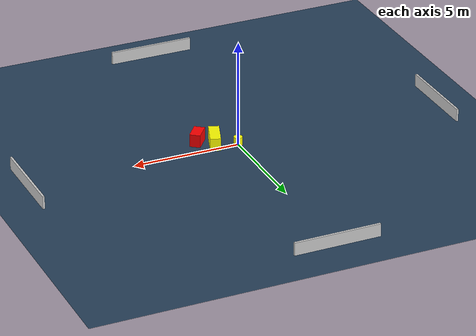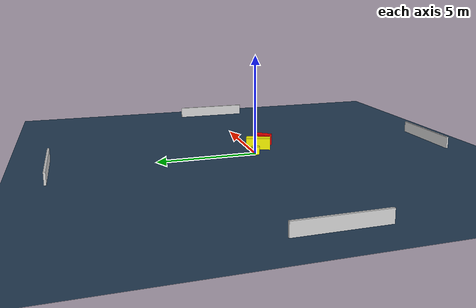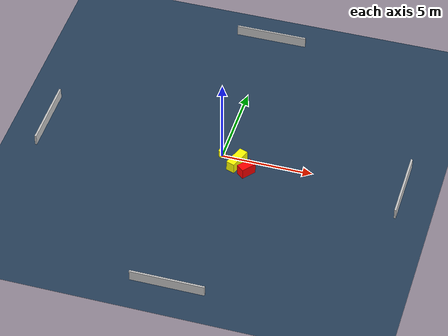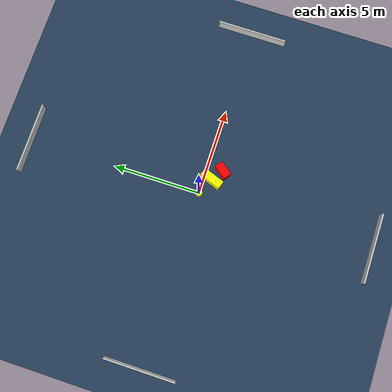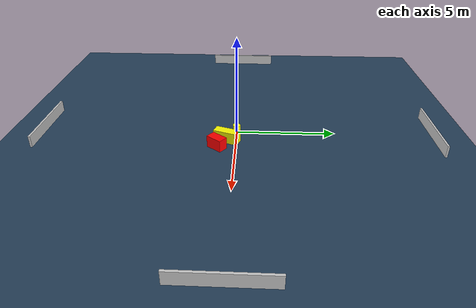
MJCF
<?xml version="1.0" ?>
<mujoco model="generated_environment">
  <option timestep="0.01" integrator="RK4" cone="elliptic"/>
  <default>
    <geom density="1"/>
  </default>
  <asset>
    <texture builtin="gradient" height="3072" name="skybox" rgb1="0.3 0.5 0.7" rgb2="0 0 0" type="skybox" width="512"/>
    <texture builtin="checker" height="300" name="groundplane" rgb1="0.2 0.3 0.4" rgb2="0.1 0.2 0.3" type="2d" width="300"/>
    <material name="groundplane" reflectance="0.2" texrepeat="5 5" texture="groundplane"/>
  </asset>
  <worldbody>
    <light dir="0 0 -1" directional="true" pos="0 0 1.5"/>
    <geom condim="3" friction="0.5 0.005 0.001" material="groundplane" name="floor" pos="0 0 0" size="0 0 0.05" type="plane"/>
    <body name="walls">
      <geom name="wall_1" condim="4" pos="-10.0 0.0 0.3" rgba="0.800000011920929 0.800000011920929 0.800000011920929 1.0" size="0.05 2.0 0.3" type="box"/>
      <geom name="wall_2" condim="4" pos="10.0 0.0 0.3" rgba="0.800000011920929 0.800000011920929 0.800000011920929 1.0" size="0.05 2.0 0.3" type="box"/>
      <geom name="wall_3" condim="4" pos="0.0 -10.0 0.3" rgba="0.800000011920929 0.800000011920929 0.800000011920929 1.0" size="2.0 0.05 0.3" type="box"/>
      <geom name="wall_4" condim="4" pos="0.0 10.0 0.3" rgba="0.800000011920929 0.800000011920929 0.800000011920929 1.0" size="2.0 0.05 0.3" type="box"/>
    </body>
    <body name="robot">
      <joint name="joint_x" type="slide" pos="0 0 0" axis="1 0 0"/>
      <joint name="joint_y" type="slide" pos="0 0 0" axis="0 1 0"/>
      <geom name="robot" type="cylinder" pos="0.0 0.0 0.2" size="0.2 0.2 0.0" mass="5.0" friction="1.0 0.005 0.0001" condim="4" rgba="1.0 1.0 0.0 1.0"/>
    </body>
    <body name="obstacle_1_movable">
      <geom name="obstacle_1_movable" condim="4" pos="0.9448926924082486 -0.45059334004456325 0.3" euler="0 0 250.03747223955457" friction="0.0 0.005 0.001" rgba="1.0 1.0 0.0 1.0" size="0.6321165632679544 0.2437336777382923 0.3" type="box" mass="0.1"/>
      <joint type="free"/>
    </body>
    <body name="obstacle_2_static">
      <geom name="obstacle_2_static" condim="4" pos="1.5914142559975322 -0.9031075391190116 0.3" euler="0 0 51.85016657994983" friction="0.0 0.005 0.001" rgba="1.0 0.0 0.0 1.0" size="0.427878924370998 0.24701989706585603 0.3" type="box"/>
    </body>
  </worldbody>
  <actuator>
    <motor name="actuator_x" joint="joint_x" gear="1" ctrlrange="-1 1"/>
    <motor name="actuator_y" joint="joint_y" gear="1" ctrlrange="-1 1"/>
  </actuator>
</mujoco>
